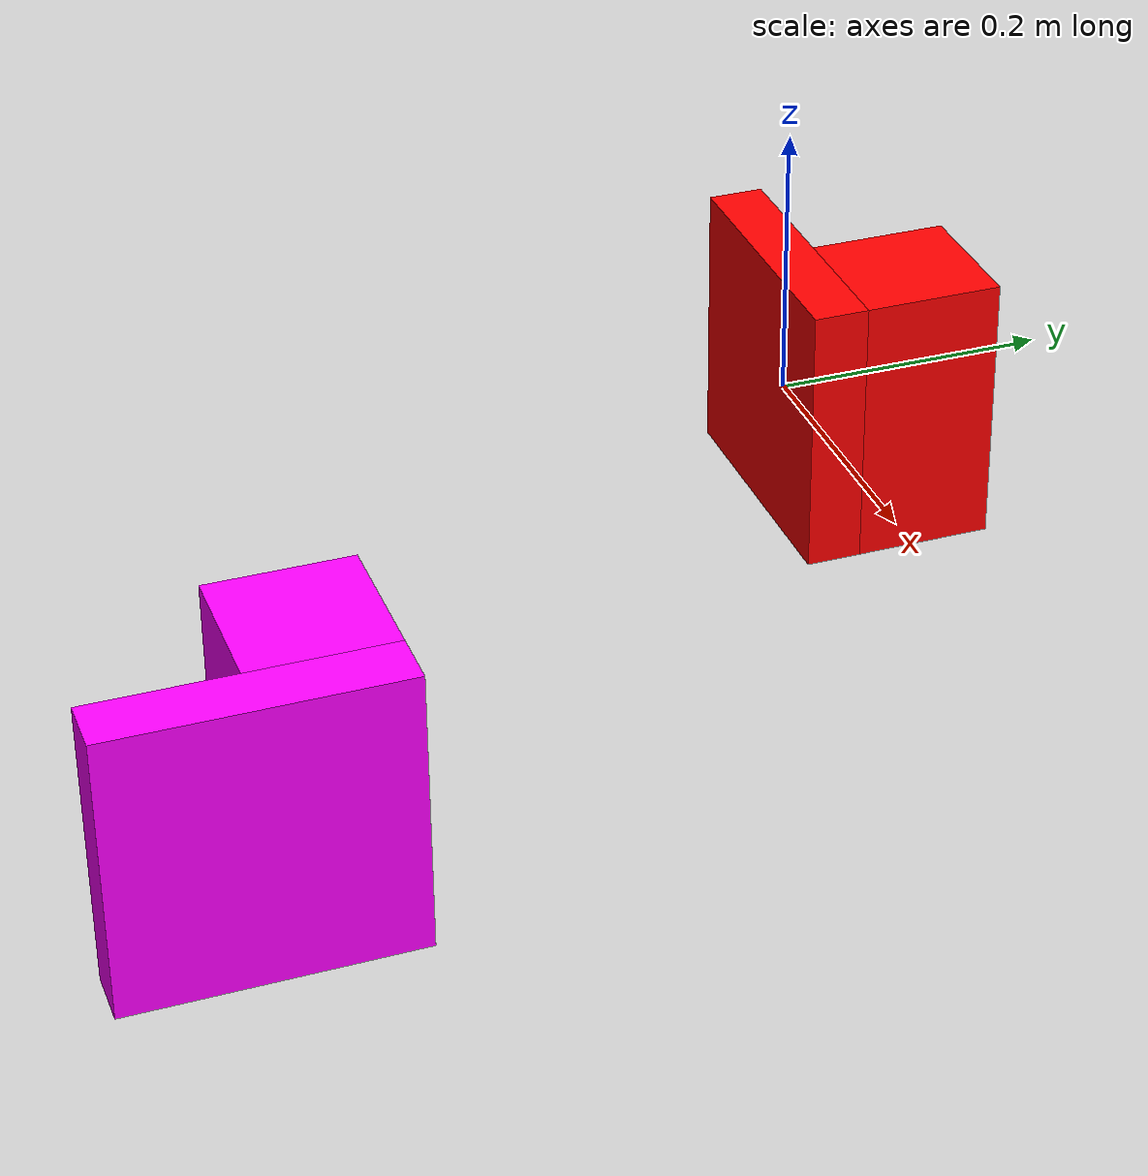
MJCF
<mujoco model="pushed_box">
    <worldbody>
        <body name="pushed_box" pos="0.0 0.0 0.0" quat="1 0 0 0">
            <geom name="pushed_box" pos="0 0 0.01" size="0.1 0.02 0.1" rgba="1 0 0 1.0" type="box" mass="0.05" friction="0.3 0.001 0.0001" priority="1"/>
            <geom name="pushed_box_part" pos="0.05 0.07 0.01" size="0.05 0.05 0.1" rgba="1 0 0 1.0" type="box" mass="0.05" friction="0.3 0.001 0.0001" priority="1"/>
            <joint name="pushed_Box_joint" type="free"/>
        </body>
        <body name="pushed_box2" pos="0.4 -0.5 0.0" quat="1 0 0 1">
            <geom name="pushed_box2" pos="0 0 0.01" size="0.1 0.02 0.1" rgba="1 0 1 1.0" type="box" mass="0.05" friction="0.3 0.001 0.0001" priority="1"/>
            <geom name="pushed_box2_part" pos="0.05 0.07 0.01" size="0.05 0.05 0.1" rgba="1 0 1 1.0" type="box" mass="0.05" friction="0.3 0.001 0.0001" priority="1"/>
            <joint name="pushed_Box_joint2" type="free"/>
        </body>

    </worldbody>
</mujoco>
